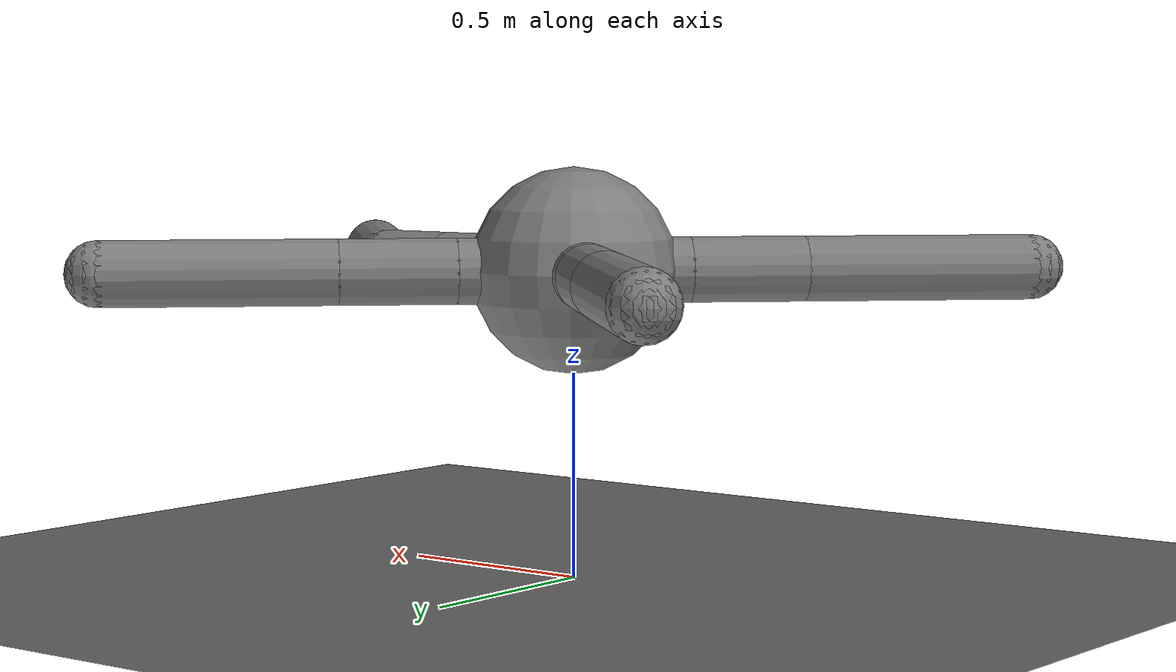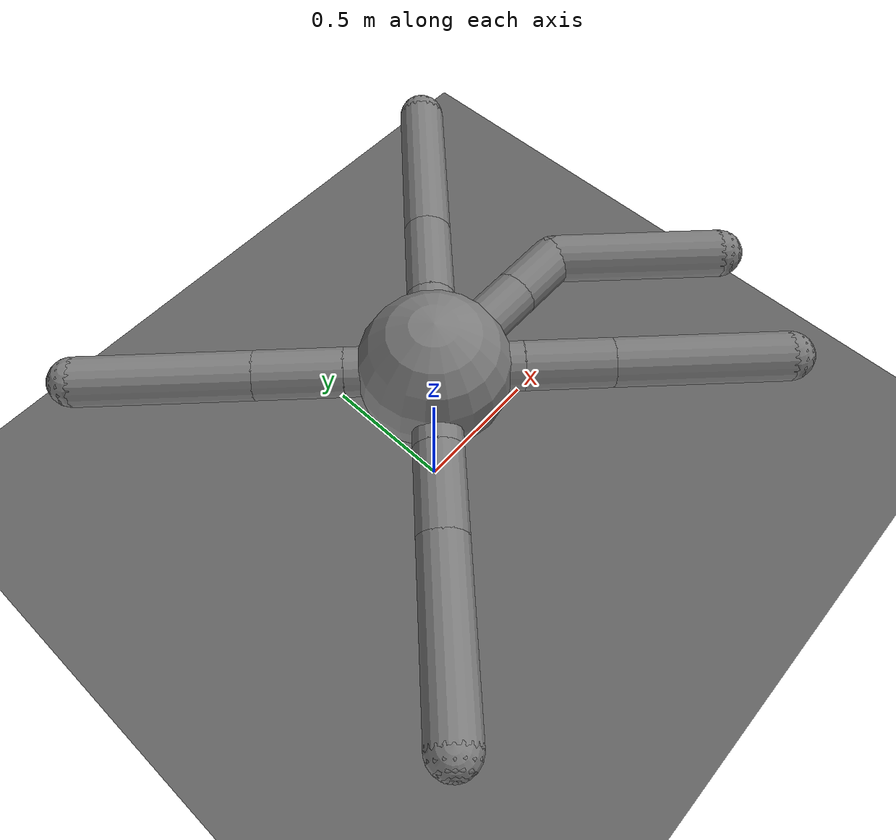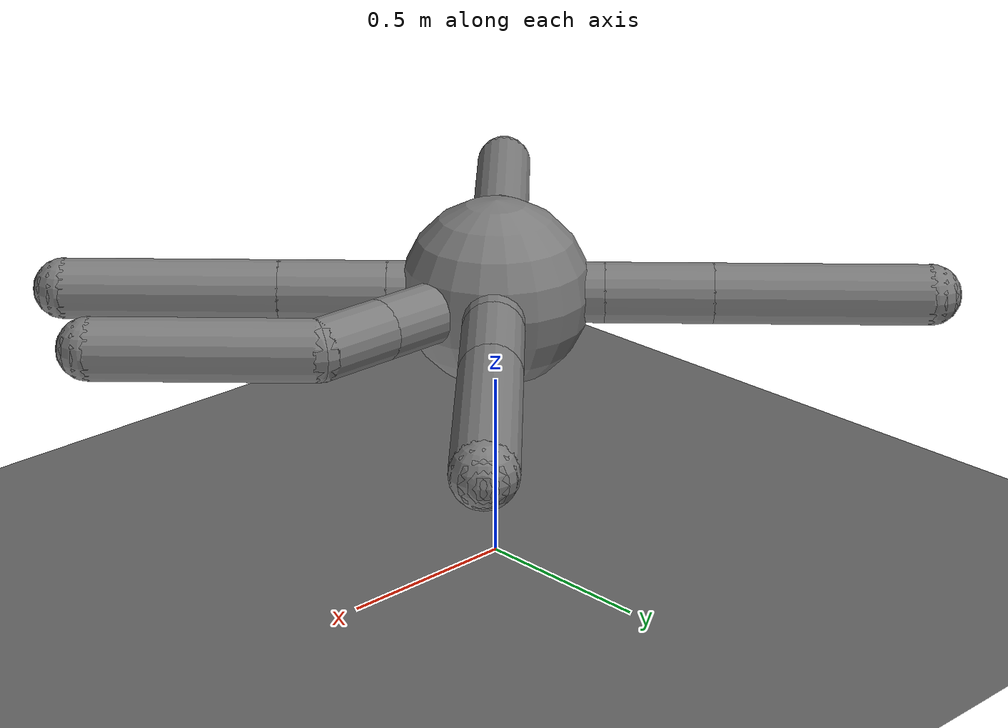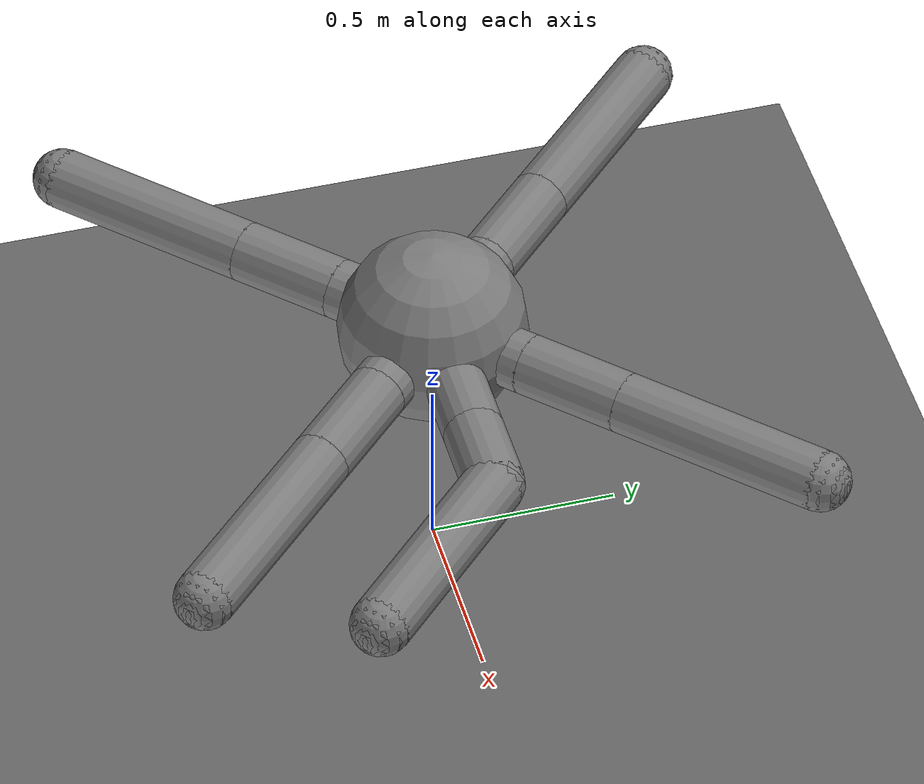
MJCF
<mujoco model="ant">
    <compiler angle="degree" coordinate="local" inertiafromgeom="true" />
    <option timestep="0.01" iterations="4" />
    <custom>
        <!-- brax custom params -->
        <numeric data="0.0 0.0 0.55 1.0 0.0 0.0 0.0 0.0 1.0 0.0 -1.0 0.0 -1.0 0.0 1.0 0.0 1.0"
            name="init_qpos" />
        <numeric data="1000" name="constraint_limit_stiffness" />
        <numeric data="4000" name="constraint_stiffness" />
        <numeric data="10" name="constraint_ang_damping" />
        <numeric data="20" name="constraint_vel_damping" />
        <numeric data="0.5" name="joint_scale_pos" />
        <numeric data="0.2" name="joint_scale_ang" />
        <numeric data="0.0" name="ang_damping" />
        <numeric data="1" name="spring_mass_scale" />
        <numeric data="1" name="spring_inertia_scale" />
        <numeric data="15" name="solver_maxls" />
    </custom>
    <default>
        <joint armature="1" damping="1" limited="true" />
        <geom contype="0" conaffinity="0" condim="3" density="5.0" friction="1 0.5 0.5" />
    </default>
    <asset>
        <texture builtin="gradient" height="100" rgb1="1 1 1" rgb2="0 0 0" type="skybox" width="100" />
        <texture builtin="flat" height="1278" mark="cross" markrgb="1 1 1" name="texgeom"
            random="0.01" rgb1="0.8 0.6 0.4" rgb2="0.8 0.6 0.4" type="cube" width="127" />
        <texture builtin="checker" height="100" name="texplane" rgb1="0 0 0" rgb2="0.8 0.8 0.8"
            type="2d" width="100" />
        <material name="MatPlane" reflectance="0.5" shininess="1" specular="1" texrepeat="60 60"
            texture="texplane" />
        <material name="geom" texture="texgeom" texuniform="true" />
    </asset>
    <worldbody>
        <light cutoff="100" diffuse="1 1 1" dir="-0 0 -1.3" directional="true" exponent="1"
            pos="0 0 1.3" specular=".1 .1 .1" />
        <geom conaffinity="1" condim="3" material="MatPlane" name="floor" pos="0 0 0"
            size="40 40 40" type="plane" />
        <body name="torso" pos="0 0 0.75">
            <camera name="track" mode="trackcom" pos="0 -3 0.3" xyaxes="1 0 0 0 0 1" />
            <geom name="torso_geom" pos="0 0 0" size="0.25" type="sphere" />
            <joint armature="0" damping="0" limited="false" margin="0.01" name="root" pos="0 0 0"
                type="free" />
            <body name="front_left_leg" pos="0 0 0">
                <geom fromto="0.0 0.0 0.0 0.2 0.2 0.0" name="aux_1_geom" size="0.08" type="capsule" />
                <body name="aux_1" pos="0.2 0.2 0">
                    <joint axis="0 0 1" name="hip_1" pos="0.0 0.0 0.0" range="-30 30" type="hinge" />
                    <geom fromto="0.0 0.0 0.0 0.2 0.2 0.0" name="left_leg_geom" size="0.08"
                        type="capsule" />
                    <body pos="0.2 0.2 0">
                        <joint axis="-1 1 0" name="ankle_1" pos="0.0 0.0 0.0" range="30 70"
                            type="hinge" />
                        <geom fromto="0.0 0.0 0.0 0.4 0.4 0.0" name="left_ankle_geom" size="0.08"
                            type="capsule" />
                        <geom name="left_foot_geom" contype="1" pos="0.4 0.4 0" size="0.08"
                            type="sphere" mass="0" />
                    </body>
                </body>
            </body>
            <body name="front_right_leg" pos="0 0 0">
                <geom fromto="0.0 0.0 0.0 -0.2 0.2 0.0" name="aux_2_geom" size="0.08" type="capsule" />
                <body name="aux_2" pos="-0.2 0.2 0">
                    <joint axis="0 0 1" name="hip_2" pos="0.0 0.0 0.0" range="-30 30" type="hinge" />
                    <geom fromto="0.0 0.0 0.0 -0.2 0.2 0.0" name="right_leg_geom" size="0.08"
                        type="capsule" />
                    <body pos="-0.2 0.2 0">
                        <joint axis="1 1 0" name="ankle_2" pos="0.0 0.0 0.0" range="-70 -30"
                            type="hinge" />
                        <geom fromto="0.0 0.0 0.0 -0.4 0.4 0.0" name="right_ankle_geom" size="0.08"
                            type="capsule" />
                        <geom name="right_foot_geom" contype="1" pos="-0.4 0.4 0" size="0.08"
                            type="sphere" mass="0" />
                    </body>
                </body>
            </body>
            <body name="back_leg" pos="0 0 0">
                <geom fromto="0.0 0.0 0.0 -0.2 -0.2 0.0" name="aux_3_geom" size="0.08"
                    type="capsule" />
                <body name="aux_3" pos="-0.2 -0.2 0">
                    <joint axis="0 0 1" name="hip_3" pos="0.0 0.0 0.0" range="-30 30" type="hinge" />
                    <geom fromto="0.0 0.0 0.0 -0.2 -0.2 0.0" name="back_leg_geom" size="0.08"
                        type="capsule" />
                    <body pos="-0.2 -0.2 0">
                        <joint axis="-1 1 0" name="ankle_3" pos="0.0 0.0 0.0" range="-70 -30"
                            type="hinge" />
                        <geom fromto="0.0 0.0 0.0 -0.4 -0.4 0.0" name="third_ankle_geom" size="0.08"
                            type="capsule" />
                        <geom name="third_foot_geom" contype="1" pos="-0.4 -0.4 0" size="0.08"
                            type="sphere" mass="0" />
                    </body>
                </body>
            </body>
            <body name="right_back_leg" pos="0 0 0">
                <geom fromto="0.0 0.0 0.0 0.2 -0.2 0.0" name="aux_4_geom" size="0.08" type="capsule" />
                <body name="aux_4" pos="0.2 -0.2 0">
                    <joint axis="0 0 1" name="hip_4" pos="0.0 0.0 0.0" range="-30 30" type="hinge" />
                    <geom fromto="0.0 0.0 0.0 0.2 -0.2 0.0" name="rightback_leg_geom" size="0.08"
                        type="capsule" />
                    <body pos="0.2 -0.2 0">
                        <joint axis="1 1 0" name="ankle_4" pos="0.0 0.0 0.0" range="30 70"
                            type="hinge" />
                        <geom fromto="0.0 0.0 0.0 0.4 -0.4 0.0" name="fourth_ankle_geom" size="0.08"
                            type="capsule" />
                        <geom name="fourth_foot_geom" contype="1" pos="0.4 -0.4 0" size="0.08"
                            type="sphere" mass="0" />
                    </body>
                </body>
            </body>
            <body name="extra_leg" pos="0 0 0">
                <geom fromto="0.0 0.0 0.0 0.4 -0 0.0" name="aux_5_geom" size="0.08"
                    type="capsule" />
                <body name="aux_5" pos="0.4 0 0">
                    <joint axis="0 0 1" name="hip_5" pos="0.0 0.0 0.0" range="-30 30" type="hinge" />
                    <geom fromto="0.0 0.0 0.0 0.2 0 0.0" name="extra_leg_geom" size="0.08"
                        type="capsule" />
                    <body pos="0.2 0 0">
                        <joint axis="1 1 0" name="ankle_5" pos="0.0 0.0 0.0" range="30 70"
                            type="hinge" />
                        <geom fromto="0.0 0.0 0.0 0.4 -0.4 0.0" name="fifth_ankle_geom" size="0.08"
                            type="capsule" />
                        <geom name="fifth_foot_geom" contype="1" pos="0.4 -0.4 0" size="0.08"
                            type="sphere" mass="0" />
                    </body>
                </body>
            </body>
        </body>
    </worldbody>
    <actuator>
        <motor ctrllimited="true" ctrlrange="-1.0 1.0" joint="hip_4" gear="150" />
        <motor ctrllimited="true" ctrlrange="-1.0 1.0" joint="ankle_4" gear="150" />
        <motor ctrllimited="true" ctrlrange="-1.0 1.0" joint="hip_1" gear="150" />
        <motor ctrllimited="true" ctrlrange="-1.0 1.0" joint="ankle_1" gear="150" />
        <motor ctrllimited="true" ctrlrange="-1.0 1.0" joint="hip_2" gear="150" />
        <motor ctrllimited="true" ctrlrange="-1.0 1.0" joint="ankle_2" gear="150" />
        <motor ctrllimited="true" ctrlrange="-1.0 1.0" joint="hip_3" gear="150" />
        <motor ctrllimited="true" ctrlrange="-1.0 1.0" joint="ankle_3" gear="150" />
        <motor ctrllimited="true" ctrlrange="-1.0 1.0" joint="hip_5" gear="150" />
        <motor ctrllimited="true" ctrlrange="-1.0 1.0" joint="ankle_5" gear="150" />
    </actuator>
</mujoco>
